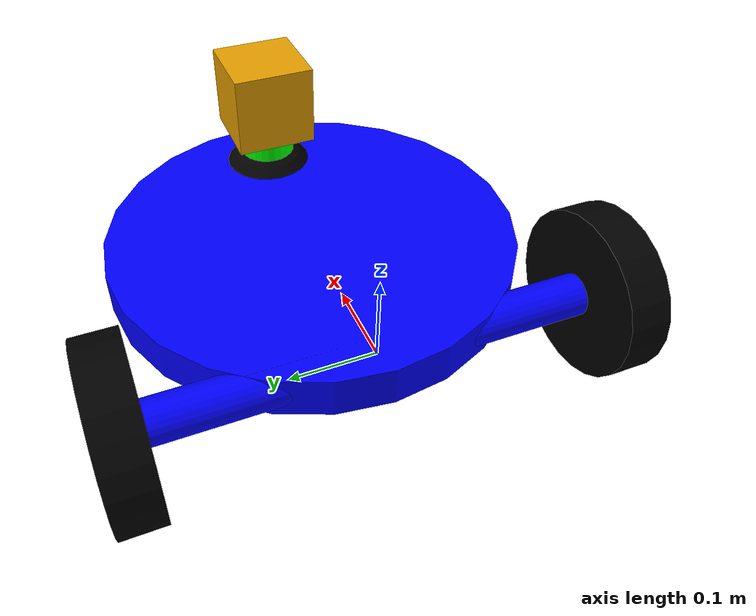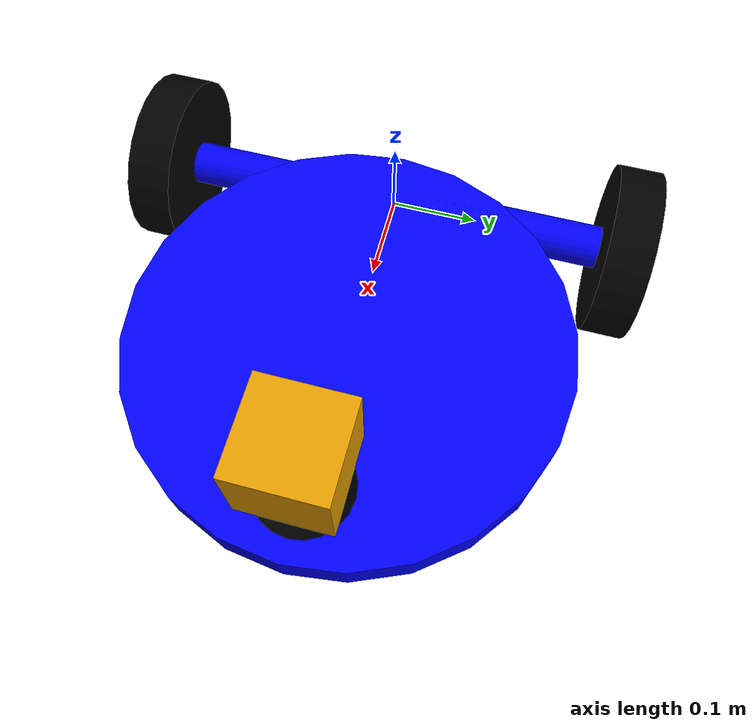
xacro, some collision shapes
<?xml version='1.0'?>

<robot name="blue_bot" xmlns:xacro="http://www.ros.org/wiki/xacro">

  <xacro:include filename="$(find slam_project)/urdf/blue_bot.gazebo" />

  <link name="robot_footprint"></link>

  <joint name="robot_footprint_joint" type="fixed">
    <origin xyz="0.2 0 0" rpy="0 0 0" />
    <parent link="robot_footprint"/>
    <child link="chassis" />
  </joint>

  <link name='chassis'>
    <pose>0 0 0.1 0 0 0</pose>

    <inertial>
      <mass value="20.0"/>
      <origin xyz="0.0 0 0" rpy=" 0 0 0"/>
      <inertia
          ixx="0.1" ixy="0" ixz="0"
          iyy="0.1" iyz="0"
          izz="0.1"
      />
    </inertial>

    <collision name='collision'>
      <origin xyz="0 0 0" rpy=" 0 0 0"/>
      <geometry>
        <cylinder radius="0.25" length="0.05"/>
      </geometry>
    </collision>

    <visual name='chassis_visual'>
      <origin xyz="0 0 0" rpy=" 0 0 0"/>
      <geometry>
        <cylinder radius="0.25" length="0.05"/>
      </geometry>
      <material name="blue">
        <color rgba="0 0 1 1"/>
      </material>
    </visual>

  </link>

  <link name='axle'>
    <pose>0 0 0 0 0 0</pose>

    <inertial>
      <mass value="2.0"/>
      <origin xyz="0.0 0 0" rpy=" 0 0 0"/>
      <inertia
          ixx="0.1" ixy="0" ixz="0"
          iyy="0.1" iyz="0"
          izz="0.1"
      />
    </inertial>

    <collision name='axle'>
      <origin xyz="0 0 0" rpy=" 0 1.5707 1.5707"/>
      <geometry>
        <cylinder radius="0.025" length="0.5"/>
      </geometry>
    </collision>

    <visual name='axle_visual'>
      <origin xyz="0 0 0" rpy=" 0 1.5707 1.5707"/>
      <geometry>
        <cylinder radius="0.025" length="0.5"/>
      </geometry>
      <material name="blue">
        <color rgba="0 0 1 1"/>
      </material>
    </visual>

  </link>

  <joint type="fixed" name="axle_joint">
    <origin xyz="-0.2 0 0" rpy="0 0 0"/>
    <child link="axle"/>
    <parent link="chassis"/>
  </joint>

  <link name='caster'>
    <pose>0 0 0 0 0 0</pose>

    <inertial>
      <mass value="3.0"/>
      <origin xyz="0.0 0 0" rpy=" 0 0 0"/>
      <inertia
          ixx="0.1" ixy="0" ixz="0"
          iyy="0.1" iyz="0"
          izz="0.1"
      />
    </inertial>

    <collision name='caster_collision'>
      <origin xyz="0 0 0" rpy=" 0 0 0"/>
      <geometry>
        <sphere radius="0.075"/>
      </geometry>
    </collision>
    <contact_coefficients kd="1.0" kp="1000.0" mu="0"/>

    <visual name='caster_visual'>
      <origin xyz="0 0 0" rpy=" 0 0 0"/>
      <geometry>
        <sphere radius="0.075"/>
      </geometry>
      <material name="black">
        <color rgba="0 0 0 1"/>
      </material>
    </visual>

  </link>

  <joint type="fixed" name="caster_joint">
    <origin xyz="0.17 0 -0.025" rpy="0 0 0"/>
    <child link="caster"/>
    <parent link="chassis"/>
  </joint>

  <link name='left_wheel'>
    <pose>0 0 0.1 0 0 0</pose>

    <inertial>
      <mass value="5.0"/>
      <origin xyz="0 0 0" rpy=" 0 0 0"/>
      <inertia
          ixx="0.1" ixy="0" ixz="0"
          iyy="0.1" iyz="0"
          izz="0.1"
      />
    </inertial>

    <collision name='collision'>
      <origin xyz="0 0 0" rpy=" 0 1.5707 1.5707"/>
      <geometry>
        <cylinder length="0.05" radius="0.1"/>
      </geometry>
    </collision>

    <visual name='wheel_visual'>
      <origin xyz="0 0 0" rpy=" 0 1.5707 1.5707"/>
      <geometry>
        <cylinder length="0.05" radius="0.1"/>
      </geometry>
      <material name="black">
        <color rgba="0 0 0 1"/>
      </material>
    </visual>

  </link>

  <joint type="continuous" name="left_wheel_hinge">
    <origin xyz="-0.2 0.275 0" rpy="0 0 0"/>
    <child link="left_wheel"/>
    <parent link="chassis"/>
    <axis xyz="0 1 0" rpy="0 0 0"/>
    <limit effort="10000" velocity="1000"/>
    <dynamics damping="1.0" friction="1.0"/>
  </joint>

  <link name='right_wheel'>
    <pose>0 0 0.1 0 0 0</pose>

    <inertial>
      <mass value="5.0"/>
      <origin xyz="0 0 0" rpy=" 0 0 0"/>
      <inertia
          ixx="0.1" ixy="0" ixz="0"
          iyy="0.1" iyz="0"
          izz="0.1"
      />
    </inertial>

    <collision name='collision'>
      <origin xyz="0 0 0" rpy=" 0 1.5707 1.5707"/>
      <geometry>
        <cylinder length="0.05" radius="0.1"/>
      </geometry>
    </collision>

    <visual name='wheel_visual'>
      <origin xyz="0 0 0" rpy=" 0 1.5707 1.5707"/>
      <geometry>
        <cylinder length="0.05" radius="0.1"/>
      </geometry>
      <material name="black">
        <color rgba="0 0 0 1"/>
      </material>
    </visual>

  </link>

  <joint type="continuous" name="right_wheel_hinge">
    <origin xyz="-0.2 -0.275 0" rpy="0 0 0"/>
    <child link="right_wheel"/>
    <parent link="chassis"/>
    <axis xyz="0 1 0" rpy="0 0 0"/>
    <limit effort="10000" velocity="1000"/>
    <dynamics damping="1.0" friction="1.0"/>
  </joint>

  <link name='camera'>
    <pose>0 0 0 0 0 0</pose>

    <inertial>
      <mass value="0.1"/>
      <origin xyz="0 0 0" rpy=" 0 0 0"/>
      <inertia
          ixx="1e-6" ixy="0" ixz="0"
          iyy="1e-6" iyz="0"
          izz="1e-6"
      />
    </inertial>

    <collision name='collision'>
      <origin xyz="0 0 0" rpy=" 0 0 0"/>
      <geometry>
        <cylinder radius="0.035" length="0.05"/>
      </geometry>
    </collision>

    <visual name='camera_visual'>
      <origin xyz="0 0 0" rpy=" 0 0 0"/>
      <geometry>
        <cylinder radius="0.035" length="0.05"/>
      </geometry>
      <material name="green">
        <color rgba="0 1 0 1"/>
      </material>
    </visual>

  </link>

  <joint type="fixed" name="camera_joint">
    <origin xyz="0.17 0 0.06" rpy="0 0 0"/>
    <child link="camera"/>
    <parent link="chassis"/>
  </joint>

  <link name="camera_optical_frame">
  </link>

  <joint name="camera_optical_joint" type="fixed">
    <origin xyz="0 0 0" rpy="${-pi/2} 0 ${-pi/2}"/>
    <parent link="camera"/>
    <child link="camera_optical_frame"/>
  </joint>

  <link name='hokuyo'>
    <pose>0 0 0 0 0 0</pose>

    <inertial>
      <mass value="0.1"/>
      <origin xyz="0 0 0" rpy=" 0 0 0"/>
      <inertia
          ixx="1e-6" ixy="0" ixz="0"
          iyy="1e-6" iyz="0"
          izz="1e-6"
      />
    </inertial>

    <collision name='collision'>
      <origin xyz="0 0 0" rpy=" 0 0 0"/>
      <geometry>
        <box size="0.1 0.1 0.1"/>
      </geometry>
    </collision>

    <visual name='hokuyo_visual'>
      <origin xyz="0 0 0" rpy=" 0 0 0"/>
      <geometry>
        <mesh filename="package://slam_project/meshes/hokuyo.dae"/>
      </geometry>
    </visual>

  </link>

  <joint type="fixed" name="hokuyo_joint">
    <origin xyz="0 0 0.06" rpy="0 0 0"/>
    <child link="hokuyo"/>
    <parent link="camera"/>
  </joint>

</robot>
